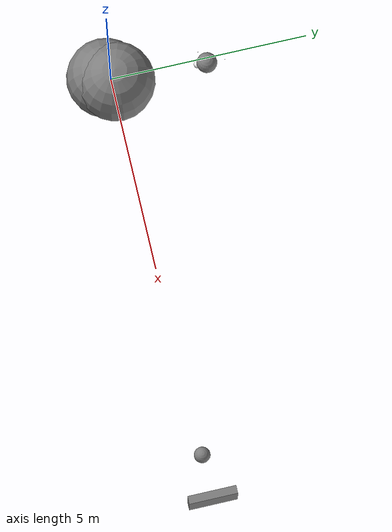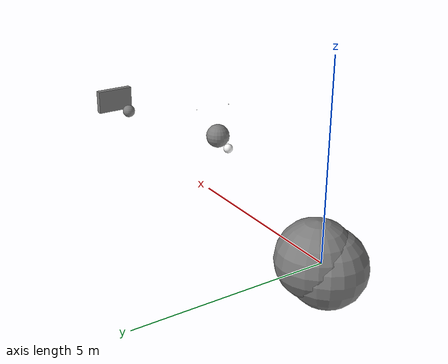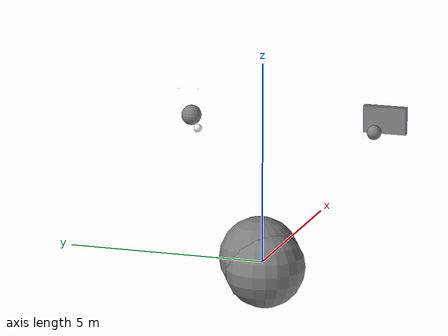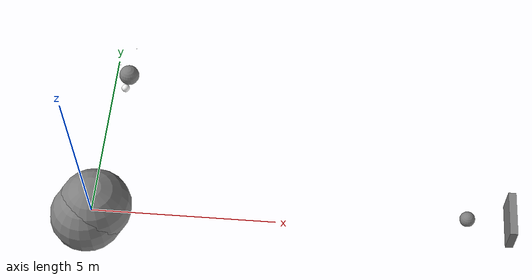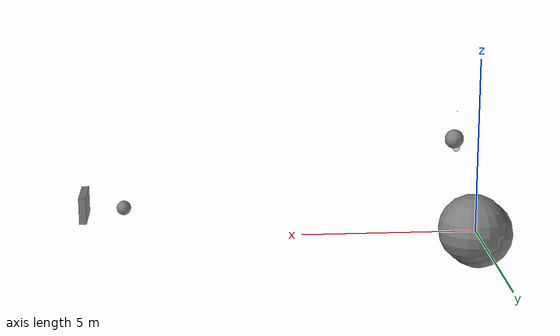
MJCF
<mujoco model="model">
  <compiler meshdir="F:/--CodeRepo/--CodeRepo/Research/___Mujoco/mujoco/mujoco/icse27/mujoco_rl_fuzz_2.0/.cache/repos/mjx/mjx/mujoco/mjx/test_data/sensor" texturedir="F:/--CodeRepo/--CodeRepo/Research/___Mujoco/mujoco/mujoco/icse27/mujoco_rl_fuzz_2.0/.cache/repos/mjx/mjx/mujoco/mjx/test_data/sensor" assetdir="F:/--CodeRepo/--CodeRepo/Research/___Mujoco/mujoco/mujoco/icse27/mujoco_rl_fuzz_2.0/.cache/repos/mjx/mjx/mujoco/mjx/test_data/sensor"/><asset>
    <material name="material"/>
  </asset>
  <worldbody>
    <!-- tree 0 -->
    <body name="body0" pos="1 2 3">
      <joint name="hinge0" type="hinge" axis="1 0 0"/>
      <geom size="0.1" material="material"/>
      <site name="site_rangefinder0" pos="-1e-3 0 0.2"/>
      <site name="site_rangefinder1" pos="-1e-3 0 0.175"/>
      <site name="site0" pos=".1 .2 .3"/>
      <body name="body1" pos="0.1 0.2 0.3">
        <joint name="hinge1" type="hinge" axis="0 1 0"/>
        <geom size="0.25"/>
        <site name="site1" pos=".2 .4 .6"/>
      </body>
    </body>

    <!-- body 2 -->
    <body name="body2" pos=".1 .1 .1">
      <joint name="ballquat2" type="ball" pos="0.1 0.1 0.1"/>
      <geom name="geom2" size="1"/>
    </body>

    <!-- body 3 -->
    <body name="body3" pos="-.1 -.1 -.1">
      <joint name="ballquat3" type="ball" pos="0.1 0.2 0.3"/>
      <geom size="1"/>
      <site name="site3"/>
    </body>

    <!-- bodies for camera projection -->
    <body pos="11.1 0 1">
      <geom type="box" size=".1 .6 .375"/>
      <site name="frontorigin" pos="-.1  .6  .375"/>
      <site name="frontcenter" pos="-.1 0 0"/>
    </body>
    <body pos="10 0 0">
      <joint axis="0 0 1" range="-180 180" limited="false"/>
      <geom type="sphere" size=".2" pos="0 0 0.9"/>
      <camera pos="0 0 1" xyaxes="0 -1 0 0 0 1" fovy="41.11209" resolution="1920 1200" name="fixedcamera"/>
    </body>

    <!-- body for rangefinder -->
    <body name="body_rangefinder" pos="1 2 4">
      <geom size="0.01" material="material"/>
    </body>

    <!-- bodies for force + torque sensors -->
    <body>
      <joint type="hinge" axis="1 0 0"/>
      <joint type="hinge" axis="0 1 0"/>
      <joint type="hinge" axis="0 0 1"/>
      <site name="site_force"/>
      <geom size="0.1"/>
    </body>
    <body>
      <joint type="slide" axis="1 0 0"/>
      <joint type="slide" axis="0 1 0"/>
      <joint type="slide" axis="0 0 1"/>
      <site name="site_torque"/>
      <geom size="0.1"/>
    </body>
  </worldbody>

  <actuator>
    <motor name="motor0" joint="hinge0" ctrlrange="-1 1" gear="10" ctrllimited="true"/>
    <motor name="motor1" joint="hinge1" ctrlrange="-1 1" gear="10" ctrllimited="true"/>
  </actuator>
</mujoco>
